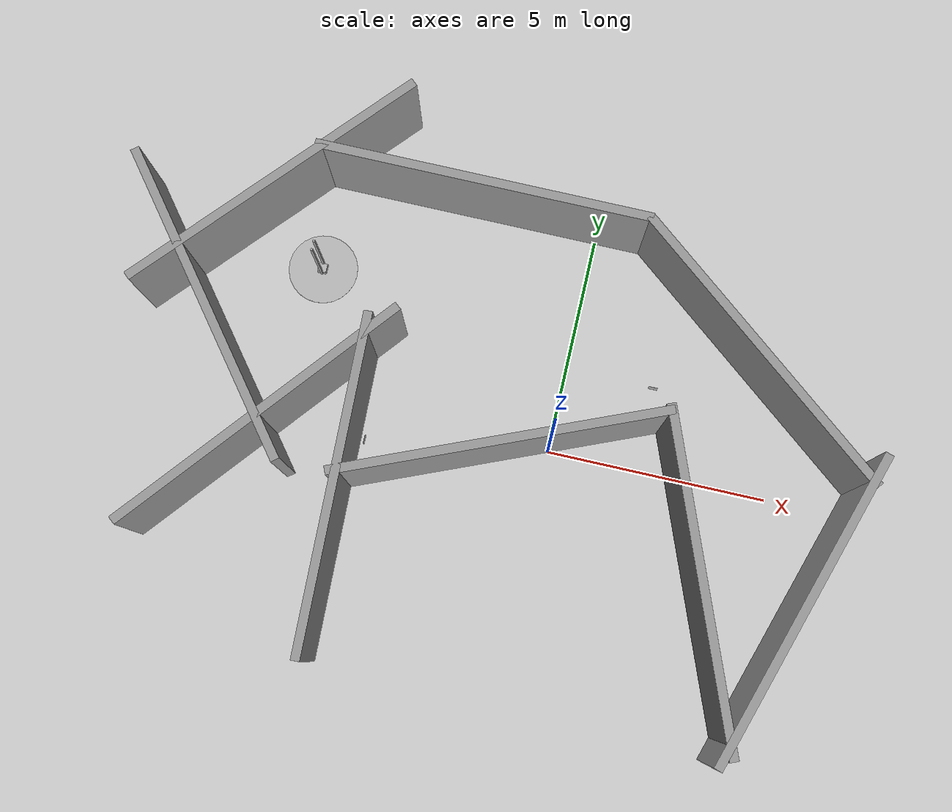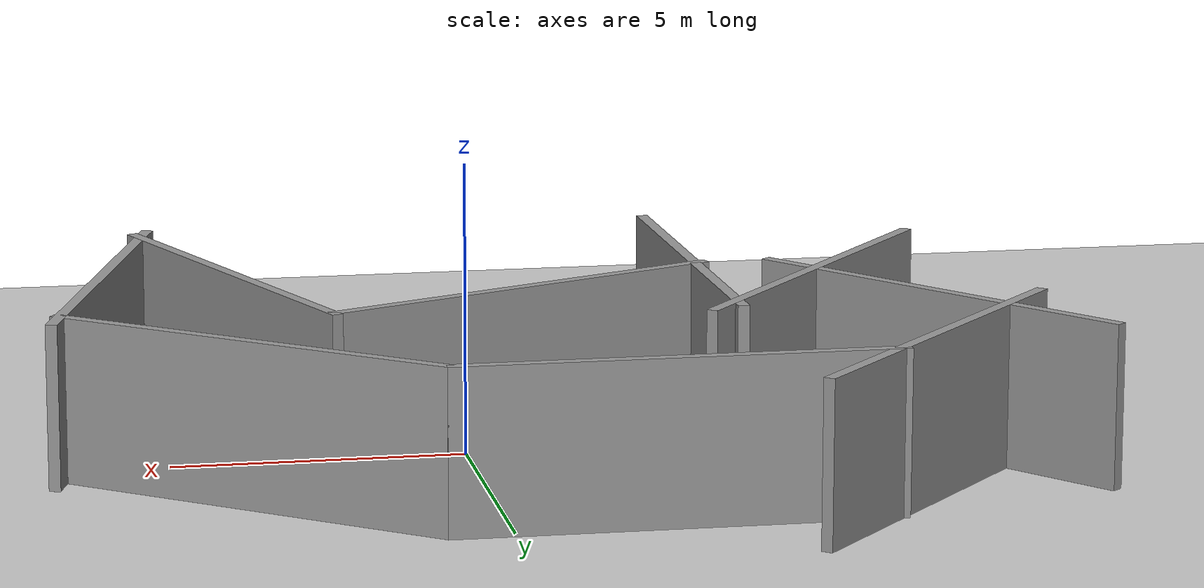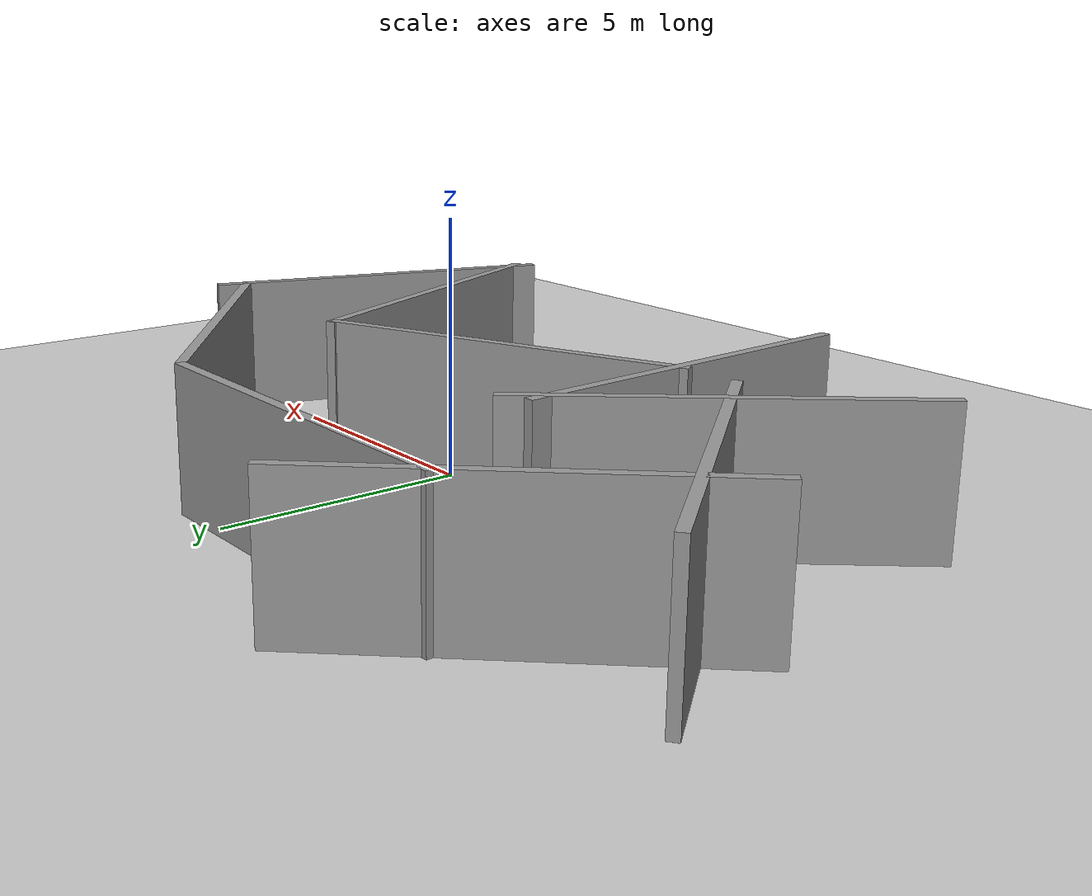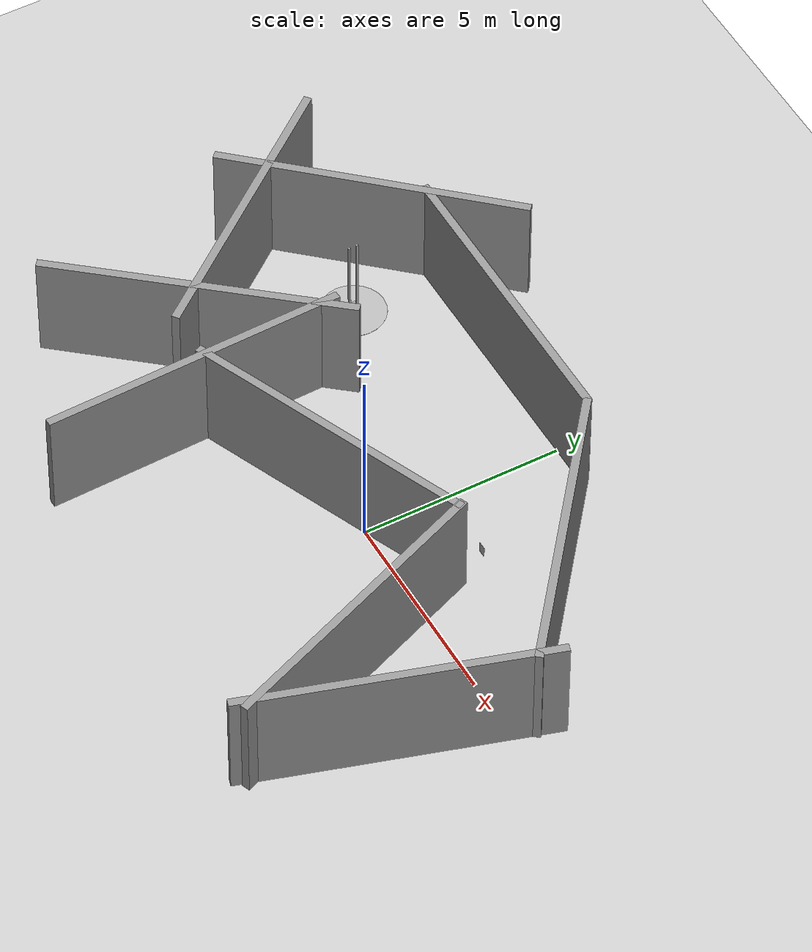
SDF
<sdf version="1.4">
 <world name="default">
  <light name="sun" type="directional">
   <pose>0 0 10 0 -0 0</pose>
   <diffuse>0.8 0.8 0.8 1</diffuse>
   <specular>0.2 0.2 0.2 1</specular>
   <attenuation>
    <range>1000</range>
    <constant>0.9</constant>
    <linear>0.01</linear>
    <quadratic>0.001</quadratic>
   </attenuation>
   <direction>-0.5 0.1 -0.9</direction>
  </light>
  <model name="ground_plane">
   <static>1</static>
   <link name="link">
    <collision name="collision">
     <geometry><plane><normal>0 0 1</normal><size>100 100</size></plane></geometry>
     <surface><friction><ode><mu>100</mu><mu2>50</mu2></ode></friction></surface>
    </collision>
    <visual name="visual">
     <cast_shadows>0</cast_shadows>
     <geometry><plane><normal>0 0 1</normal><size>100 100</size></plane></geometry>
     <material>
      <script><uri>file://media/materials/scripts/gazebo.material</uri><name>Gazebo/Grey</name></script>
     </material>
    </visual>
    <velocity_decay><linear>0</linear><angular>0</angular></velocity_decay>
   </link>
  </model>
  <physics type="ode">
   <max_step_size>0.001</max_step_size>
   <real_time_factor>1</real_time_factor>
   <real_time_update_rate>1000</real_time_update_rate>
   <gravity>0 0 -9.8</gravity>
  </physics>
  <scene><ambient>0.4 0.4 0.4 1</ambient><background>0.7 0.7 0.7 1</background><shadows>1</shadows></scene>
  <spherical_coordinates>
   <surface_model>EARTH_WGS84</surface_model>
   <latitude_deg>0</latitude_deg>
   <longitude_deg>0</longitude_deg>
   <elevation>0</elevation>
   <heading_deg>0</heading_deg>
  </spherical_coordinates>
  <model name="grey_wall_0">
   <static>1</static>
   <link name="link">
    <pose>0 0 1.4 0 -0 0</pose>
    <collision name="collision"><geometry><box><size>7.5 0.2 2.8</size></box></geometry></collision>
    <visual name="visual">
     <cast_shadows>0</cast_shadows>
     <geometry><box><size>7.5 0.2 2.8</size></box></geometry>
     <material>
      <script>
       <uri>model://grey_wall/materials/scripts</uri>
       <uri>model://grey_wall/materials/textures</uri>
       <name>vrc/grey_wall</name>
      </script>
     </material>
    </visual>
    <velocity_decay><linear>0</linear><angular>0</angular></velocity_decay>
   </link>
   <pose>-6.18965 -0.915883 0 0 0 -2.25962</pose>
  </model>
  <model name="grey_wall_1">
   <static>1</static>
   <link name="link">
    <pose>0 0 1.4 0 -0 0</pose>
    <collision name="collision"><geometry><box><size>7.5 0.2 2.8</size></box></geometry></collision>
    <visual name="visual">
     <cast_shadows>0</cast_shadows>
     <geometry><box><size>7.5 0.2 2.8</size></box></geometry>
     <material>
      <script>
       <uri>model://grey_wall/materials/scripts</uri>
       <uri>model://grey_wall/materials/textures</uri>
       <name>vrc/grey_wall</name>
      </script>
     </material>
    </visual>
    <velocity_decay><linear>0</linear><angular>0</angular></velocity_decay>
   </link>
   <pose>-1.0384 -0.341385 0 0 0 -2.74278</pose>
  </model>
  <model name="grey_wall_8">
   <static>1</static>
   <link name="link">
    <pose>0 0 1.4 0 -0 0</pose>
    <collision name="collision"><geometry><box><size>7.5 0.2 2.8</size></box></geometry></collision>
    <visual name="visual">
     <cast_shadows>0</cast_shadows>
     <geometry><box><size>7.5 0.2 2.8</size></box></geometry>
     <material>
      <script>
       <uri>model://grey_wall/materials/scripts</uri>
       <uri>model://grey_wall/materials/textures</uri>
       <name>vrc/grey_wall</name>
      </script>
     </material>
    </visual>
    <velocity_decay><linear>0</linear><angular>0</angular></velocity_decay>
   </link>
   <pose>-2.64864 5.08867 0 0 -0 0</pose>
  </model>
  <model name="grey_wall_9">
   <static>1</static>
   <link name="link">
    <pose>0 0 1.4 0 -0 0</pose>
    <collision name="collision"><geometry><box><size>7.5 0.2 2.8</size></box></geometry></collision>
    <visual name="visual">
     <cast_shadows>0</cast_shadows>
     <geometry><box><size>7.5 0.2 2.8</size></box></geometry>
     <material>
      <script>
       <uri>model://grey_wall/materials/scripts</uri>
       <uri>model://grey_wall/materials/textures</uri>
       <name>vrc/grey_wall</name>
      </script>
     </material>
    </visual>
    <velocity_decay><linear>0</linear><angular>0</angular></velocity_decay>
   </link>
   <pose>-4.27115 -2.01718 0 0 -0 1.60456</pose>
  </model>
  <model name="grey_wall_3">
   <static>1</static>
   <link name="link">
    <pose>0 0 1.4 0 -0 0</pose>
    <collision name="collision"><geometry><box><size>7.5 0.2 2.8</size></box></geometry></collision>
    <visual name="visual">
     <cast_shadows>0</cast_shadows>
     <geometry><box><size>7.5 0.2 2.8</size></box></geometry>
     <material>
      <script>
       <uri>model://grey_wall/materials/scripts</uri>
       <uri>model://grey_wall/materials/textures</uri>
       <name>vrc/grey_wall</name>
      </script>
     </material>
    </visual>
    <velocity_decay><linear>0</linear><angular>0</angular></velocity_decay>
   </link>
   <pose>-7.86511 1.13939 0 0 0 -0.908094</pose>
  </model>
  <model name="grey_wall_4">
   <static>1</static>
   <link name="link">
    <pose>0 0 1.4 0 -0 0</pose>
    <collision name="collision"><geometry><box><size>7.5 0.2 2.8</size></box></geometry></collision>
    <visual name="visual">
     <cast_shadows>0</cast_shadows>
     <geometry><box><size>7.5 0.2 2.8</size></box></geometry>
     <material>
      <script>
       <uri>model://grey_wall/materials/scripts</uri>
       <uri>model://grey_wall/materials/textures</uri>
       <name>vrc/grey_wall</name>
      </script>
     </material>
    </visual>
    <velocity_decay><linear>0</linear><angular>0</angular></velocity_decay>
   </link>
   <pose>-7.1167 4.11091 0 0 0 -2.30119</pose>
  </model>
  <model name="cluedo_character_0">
   <static>1</static>
   <link name="link">
    <collision name="collision">
     <geometry><plane><normal>0 0 1</normal><size>0.21 0.297</size></plane></geometry>
     <surface><friction><ode><mu>100</mu><mu2>50</mu2></ode></friction></surface>
    </collision>
    <visual name="visual">
     <pose>-8.09 -0.7 0.4 1.57 -5.55112e-17 1.57</pose>
     <cast_shadows>0</cast_shadows>
     <geometry><plane><normal>0 0 1</normal><size>0.21 0.297</size></plane></geometry>
     <material>
      <script>
       <uri>model://cluedo_character/materials/scripts</uri>
       <uri>model://cluedo_character/materials/textures</uri>
       <name>Cluedo_character/Image</name>
      </script>
     </material>
    </visual>
    <velocity_decay><linear>0</linear><angular>0</angular></velocity_decay>
   </link>
   <pose>4 0 0 0 -0 0</pose>
  </model>
  <model name="cluedo_weapon_0">
   <static>1</static>
   <link name="link">
    <collision name="collision">
     <geometry><plane><normal>0 0 1</normal><size>0.21 0.297</size></plane></geometry>
     <surface><friction><ode><mu>100</mu><mu2>50</mu2></ode></friction></surface>
    </collision>
    <visual name="visual">
     <pose>-6 -0.11 0.4 1.57 -0 0</pose>
     <cast_shadows>0</cast_shadows>
     <geometry><plane><normal>0 0 1</normal><size>0.21 0.297</size></plane></geometry>
     <material>
      <script>
       <uri>model://cluedo_weapon/materials/scripts</uri>
       <uri>model://cluedo_weapon/materials/textures</uri>
       <name>Cluedo_weapon/Image</name>
      </script>
     </material>
    </visual>
    <velocity_decay><linear>0</linear><angular>0</angular></velocity_decay>
   </link>
   <pose>8 2 0 0 -0 0</pose>
  </model>
  <model name="grey_wall">
   <static>1</static>
   <link name="link">
    <pose>0 0 1.4 0 -0 0</pose>
    <collision name="collision"><geometry><box><size>7.5 0.2 2.8</size></box></geometry></collision>
    <visual name="visual">
     <cast_shadows>0</cast_shadows>
     <geometry><box><size>7.5 0.2 2.8</size></box></geometry>
     <material>
      <script>
       <uri>model://grey_wall/materials/scripts</uri>
       <uri>model://grey_wall/materials/textures</uri>
       <name>vrc/grey_wall</name>
      </script>
     </material>
    </visual>
    <velocity_decay><linear>0</linear><angular>0</angular></velocity_decay>
   </link>
   <pose>3.97319 2.78968 0 0 -0 2.47437</pose>
  </model>
  <model name="grey_wall_2">
   <static>1</static>
   <link name="link">
    <pose>0 0 1.4 0 -0 0</pose>
    <collision name="collision"><geometry><box><size>7.5 0.2 2.8</size></box></geometry></collision>
    <visual name="visual">
     <cast_shadows>0</cast_shadows>
     <geometry><box><size>7.5 0.2 2.8</size></box></geometry>
     <material>
      <script>
       <uri>model://grey_wall/materials/scripts</uri>
       <uri>model://grey_wall/materials/textures</uri>
       <name>vrc/grey_wall</name>
      </script>
     </material>
    </visual>
    <velocity_decay><linear>0</linear><angular>0</angular></velocity_decay>
   </link>
   <pose>3.69736 -2.26109 0 0 0 -1.19171</pose>
  </model>
  <model name="grey_wall_5">
   <static>1</static>
   <link name="link">
    <pose>0 0 1.4 0 -0 0</pose>
    <collision name="collision"><geometry><box><size>7.5 0.2 2.8</size></box></geometry></collision>
    <visual name="visual">
     <cast_shadows>0</cast_shadows>
     <geometry><box><size>7.5 0.2 2.8</size></box></geometry>
     <material>
      <script>
       <uri>model://grey_wall/materials/scripts</uri>
       <uri>model://grey_wall/materials/textures</uri>
       <name>vrc/grey_wall</name>
      </script>
     </material>
    </visual>
    <velocity_decay><linear>0</linear><angular>0</angular></velocity_decay>
   </link>
   <pose>5.89703 -2.39723 0 0 0 -1.87031</pose>
  </model>
  <model name="mass_on_rails">
   <link name="base">
    <inertial>
     <mass>100</mass>
     <inertia><ixx>1</ixx><ixy>0</ixy><ixz>0</ixz><iyy>1</iyy><iyz>0</iyz><izz>1</izz></inertia>
    </inertial>
    <visual name="vis_base">
     <pose>0 0 0.01 0 -0 0</pose>
     <geometry><cylinder><radius>0.8</radius><length>0.01</length></cylinder></geometry>
    </visual>
    <collision name="col_base">
     <pose>0 0 0.01 0 -0 0</pose>
     <geometry><cylinder><radius>0.8</radius><length>0.01</length></cylinder></geometry>
    </collision>
    <visual name="vis_rail1">
     <pose>0 0.1 1.1 0 -0 0</pose>
     <geometry><box><size>0.05 0.05 2.2</size></box></geometry>
    </visual>
    <collision name="col_rail1">
     <pose>0 0.1 1.1 0 -0 0</pose>
     <geometry><box><size>0.05 0.05 2.2</size></box></geometry>
    </collision>
    <visual name="vis_rail2">
     <pose>0 -0.1 1.1 0 -0 0</pose>
     <geometry><box><size>0.05 0.05 2.2</size></box></geometry>
    </visual>
    <collision name="col_rail2">
     <pose>0 -0.1 1.1 0 -0 0</pose>
     <geometry><box><size>0.05 0.05 2.2</size></box></geometry>
    </collision>
    <velocity_decay><linear>0</linear><angular>0</angular></velocity_decay>
   </link>
   <link name="mass">
    <inertial>
     <mass>0.1</mass>
     <pose>0 0 0.1 0 -0 0</pose>
     <inertia><ixx>0.00067</ixx><ixy>0</ixy><ixz>0</ixz><iyy>0.00067</iyy><iyz>0</iyz><izz>0.00067</izz></inertia>
    </inertial>
    <visual name="visual">
     <pose>0 0 0.1 0 -0 0</pose>
     <geometry><box><size>0.2 0.2 0.2</size></box></geometry>
    </visual>
    <collision name="collision">
     <pose>0 0 0.1 0 -0 0</pose>
     <geometry><box><size>0.2 0.2 0.2</size></box></geometry>
    </collision>
    <velocity_decay><linear>0</linear><angular>0</angular></velocity_decay>
   </link>
   <joint name="joint" type="prismatic">
    <parent>base</parent>
    <child>mass</child>
    <axis>
     <dynamics><damping>0.01</damping><friction>0.01</friction></dynamics>
     <xyz>0 0 1</xyz>
     <limit><lower>0</lower><upper>2</upper></limit>
    </axis>
   </joint>
   <pose>-5.99998 2.99999 0 0 -0 0.000254</pose>
   <static>0</static>
  </model>
 </world>
</sdf>
